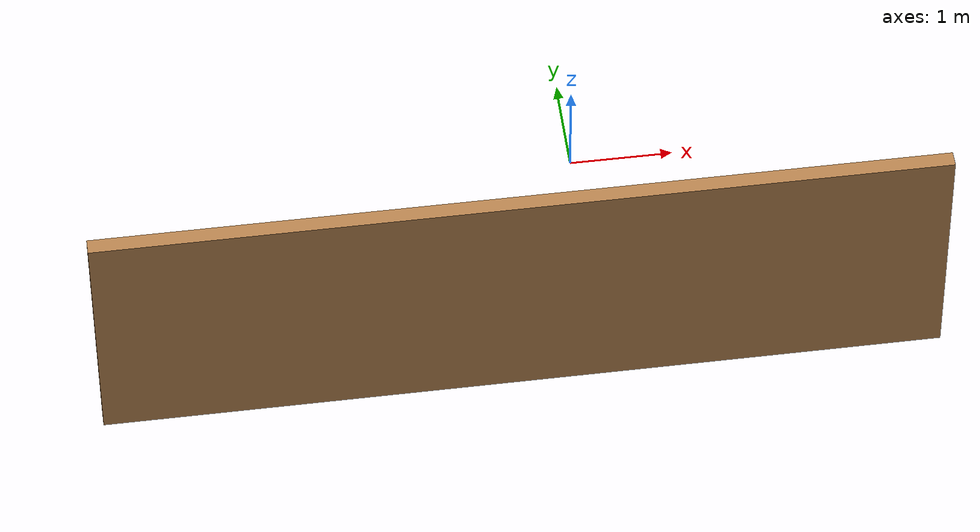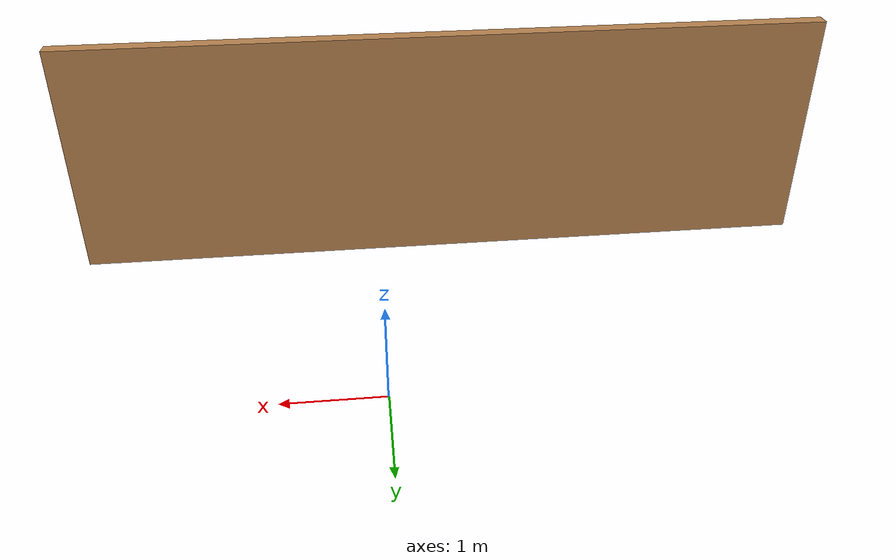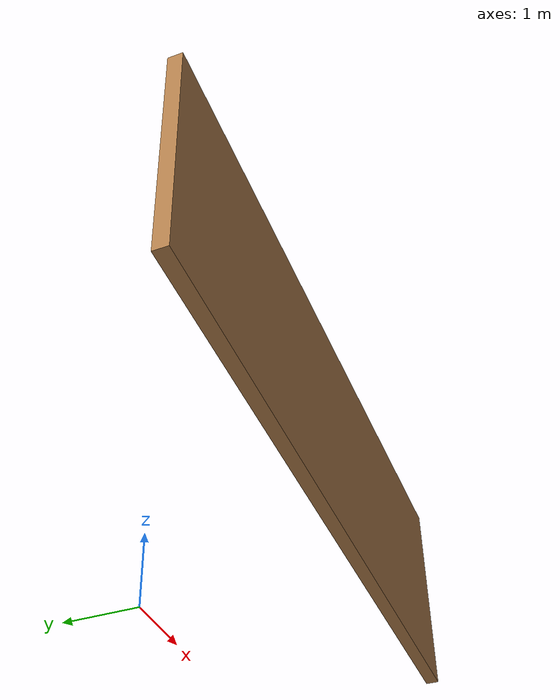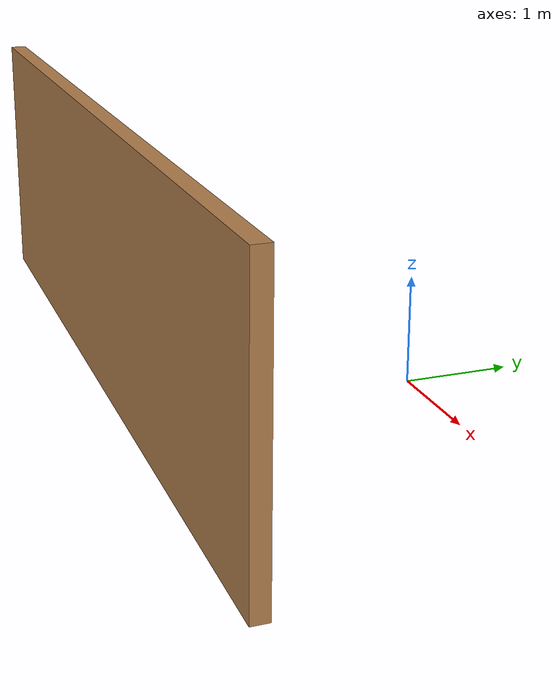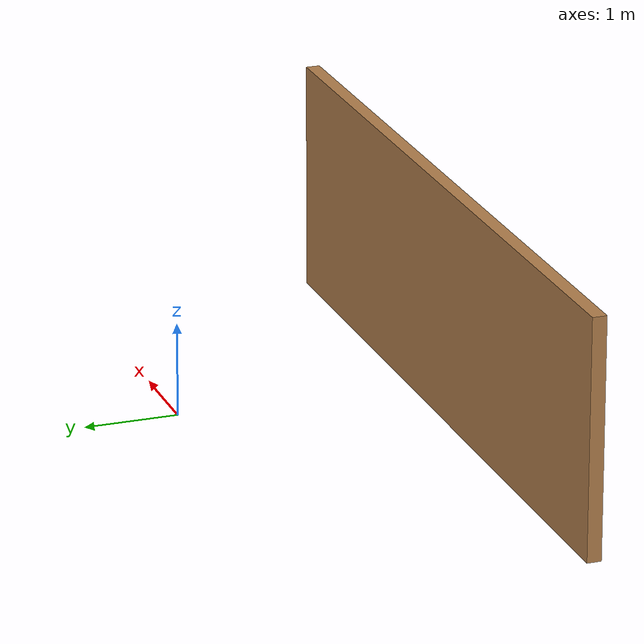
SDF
<?xml version='1.0'?>
<sdf version='1.6'>
  <model name='wood_wall_8m'>
    <pose frame=''>-0.815 -2.59 0 0 -0 0</pose>
    <link name='Wall_2'>
      <collision name='Wall_2_Collision'>
        <geometry>
          <box>
            <size>8 0.15 2.5</size>
          </box>
        </geometry>
        <pose frame=''>0 0 1.25 0 -0 0</pose>
      </collision>
      <visual name='Wall_2_Visual'>
        <pose frame=''>0 0 1.25 0 -0 0</pose>
        <geometry>
          <box>
            <size>8 0.15 2.5</size>
          </box>
        </geometry>
        <material>
          <script>
            <uri>file://media/materials/scripts/gazebo.material</uri>
            <name>Gazebo/Wood</name>
          </script>
          <ambient>1 1 1 1</ambient>
        </material>
        <meta>
          <layer>0</layer>
        </meta>
      </visual>
      <pose frame=''>0 0 0 0 -0 0</pose>
    </link>
    <static>1</static>
  </model>
</sdf>
